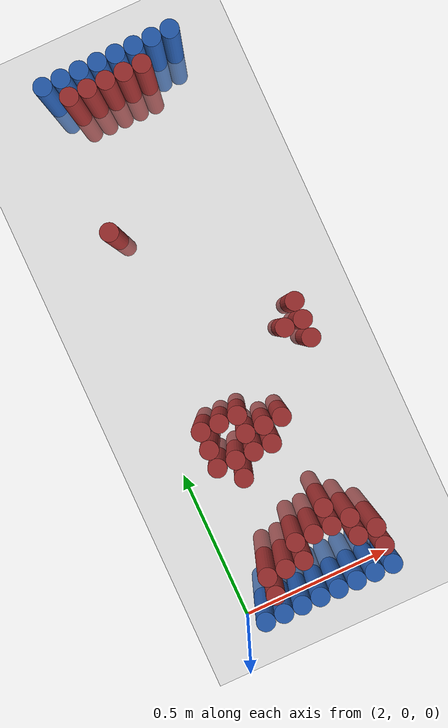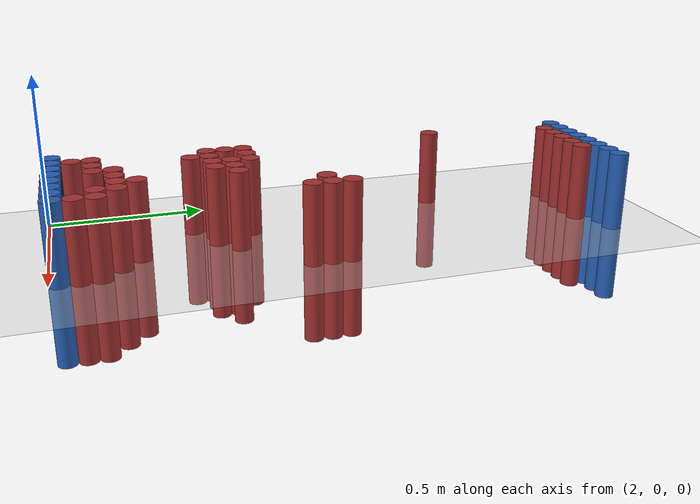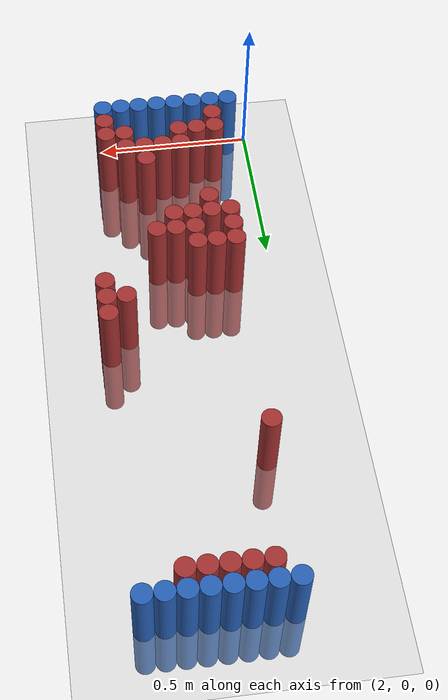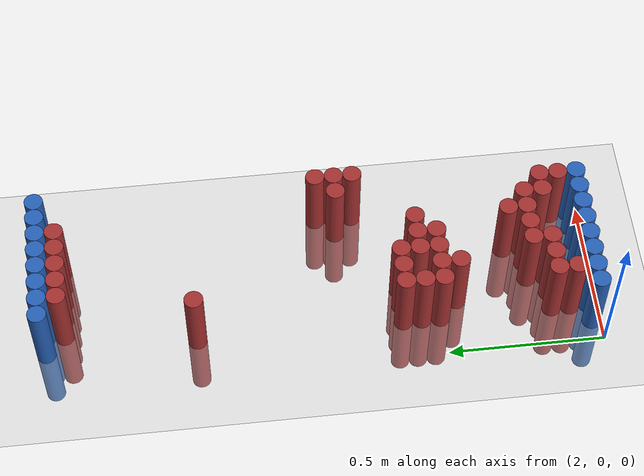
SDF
<sdf version="1.6">
 <world name="default">
  <model name="ground_plane">
   <static>1</static>
   <link name="link">
    <collision name="collision">
     <geometry><plane><normal>0 0 1</normal><size>100 100</size></plane></geometry>
     <surface><friction><ode><mu>100</mu><mu2>50</mu2></ode></friction></surface>
    </collision>
    <visual name="visual">
     <cast_shadows>0</cast_shadows>
     <geometry><plane><normal>0 0 1</normal><size>100 100</size></plane></geometry>
     <material>
      <script><uri>file://media/materials/scripts/gazebo.material</uri><name>Gazebo/Grey</name></script>
     </material>
    </visual>
   </link>
  </model>
  <model name="unit_cylinder_96">
   <static>1</static>
   <pose>2.130000 1.770000 0.000000 0.000000 0.000000 0.000000</pose>
   <link name="link">
    <inertial>
     <mass>1</mass>
     <inertia><ixx>0.145833</ixx><ixy>0</ixy><ixz>0</ixz><iyy>0.145833</iyy><iyz>0</iyz><izz>0.125</izz></inertia>
    </inertial>
    <collision name="collision">
     <geometry><cylinder><radius>0.030000</radius><length>0.5</length></cylinder></geometry>
    </collision>
    <visual name="visual">
     <geometry><cylinder><radius>0.030000</radius><length>0.5</length></cylinder></geometry>
     <material>
      <ambient>0.152000 0.379000 0.720000 1</ambient>
      <diffuse>0.152000 0.379000 0.720000 1</diffuse>
     </material>
     <material>
      <script><name>Gazebo/Grey</name><uri>file://media/materials/scripts/gazebo.material</uri></script>
     </material>
    </visual>
   </link>
  </model>
  <model name="unit_cylinder_97">
   <static>1</static>
   <pose>2.190000 1.770000 0.000000 0.000000 0.000000 0.000000</pose>
   <link name="link">
    <inertial>
     <mass>1</mass>
     <inertia><ixx>0.145833</ixx><ixy>0</ixy><ixz>0</ixz><iyy>0.145833</iyy><iyz>0</iyz><izz>0.125</izz></inertia>
    </inertial>
    <collision name="collision">
     <geometry><cylinder><radius>0.030000</radius><length>0.5</length></cylinder></geometry>
    </collision>
    <visual name="visual">
     <geometry><cylinder><radius>0.030000</radius><length>0.5</length></cylinder></geometry>
     <material>
      <ambient>0.152000 0.379000 0.720000 1</ambient>
      <diffuse>0.152000 0.379000 0.720000 1</diffuse>
     </material>
     <material>
      <script><name>Gazebo/Grey</name><uri>file://media/materials/scripts/gazebo.material</uri></script>
     </material>
    </visual>
   </link>
  </model>
  <model name="unit_cylinder_98">
   <static>1</static>
   <pose>2.250000 1.770000 0.000000 0.000000 0.000000 0.000000</pose>
   <link name="link">
    <inertial>
     <mass>1</mass>
     <inertia><ixx>0.145833</ixx><ixy>0</ixy><ixz>0</ixz><iyy>0.145833</iyy><iyz>0</iyz><izz>0.125</izz></inertia>
    </inertial>
    <collision name="collision">
     <geometry><cylinder><radius>0.030000</radius><length>0.5</length></cylinder></geometry>
    </collision>
    <visual name="visual">
     <geometry><cylinder><radius>0.030000</radius><length>0.5</length></cylinder></geometry>
     <material>
      <ambient>0.152000 0.379000 0.720000 1</ambient>
      <diffuse>0.152000 0.379000 0.720000 1</diffuse>
     </material>
     <material>
      <script><name>Gazebo/Grey</name><uri>file://media/materials/scripts/gazebo.material</uri></script>
     </material>
    </visual>
   </link>
  </model>
  <model name="unit_cylinder_99">
   <static>1</static>
   <pose>2.310000 1.770000 0.000000 0.000000 0.000000 0.000000</pose>
   <link name="link">
    <inertial>
     <mass>1</mass>
     <inertia><ixx>0.145833</ixx><ixy>0</ixy><ixz>0</ixz><iyy>0.145833</iyy><iyz>0</iyz><izz>0.125</izz></inertia>
    </inertial>
    <collision name="collision">
     <geometry><cylinder><radius>0.030000</radius><length>0.5</length></cylinder></geometry>
    </collision>
    <visual name="visual">
     <geometry><cylinder><radius>0.030000</radius><length>0.5</length></cylinder></geometry>
     <material>
      <ambient>0.152000 0.379000 0.720000 1</ambient>
      <diffuse>0.152000 0.379000 0.720000 1</diffuse>
     </material>
     <material>
      <script><name>Gazebo/Grey</name><uri>file://media/materials/scripts/gazebo.material</uri></script>
     </material>
    </visual>
   </link>
  </model>
  <model name="unit_cylinder_100">
   <static>1</static>
   <pose>2.370000 1.770000 0.000000 0.000000 0.000000 0.000000</pose>
   <link name="link">
    <inertial>
     <mass>1</mass>
     <inertia><ixx>0.145833</ixx><ixy>0</ixy><ixz>0</ixz><iyy>0.145833</iyy><iyz>0</iyz><izz>0.125</izz></inertia>
    </inertial>
    <collision name="collision">
     <geometry><cylinder><radius>0.030000</radius><length>0.5</length></cylinder></geometry>
    </collision>
    <visual name="visual">
     <geometry><cylinder><radius>0.030000</radius><length>0.5</length></cylinder></geometry>
     <material>
      <ambient>0.152000 0.379000 0.720000 1</ambient>
      <diffuse>0.152000 0.379000 0.720000 1</diffuse>
     </material>
     <material>
      <script><name>Gazebo/Grey</name><uri>file://media/materials/scripts/gazebo.material</uri></script>
     </material>
    </visual>
   </link>
  </model>
  <model name="unit_cylinder_101">
   <static>1</static>
   <pose>2.430000 1.770000 0.000000 0.000000 0.000000 0.000000</pose>
   <link name="link">
    <inertial>
     <mass>1</mass>
     <inertia><ixx>0.145833</ixx><ixy>0</ixy><ixz>0</ixz><iyy>0.145833</iyy><iyz>0</iyz><izz>0.125</izz></inertia>
    </inertial>
    <collision name="collision">
     <geometry><cylinder><radius>0.030000</radius><length>0.5</length></cylinder></geometry>
    </collision>
    <visual name="visual">
     <geometry><cylinder><radius>0.030000</radius><length>0.5</length></cylinder></geometry>
     <material>
      <ambient>0.152000 0.379000 0.720000 1</ambient>
      <diffuse>0.152000 0.379000 0.720000 1</diffuse>
     </material>
     <material>
      <script><name>Gazebo/Grey</name><uri>file://media/materials/scripts/gazebo.material</uri></script>
     </material>
    </visual>
   </link>
  </model>
  <model name="unit_cylinder_102">
   <static>1</static>
   <pose>2.490000 1.770000 0.000000 0.000000 0.000000 0.000000</pose>
   <link name="link">
    <inertial>
     <mass>1</mass>
     <inertia><ixx>0.145833</ixx><ixy>0</ixy><ixz>0</ixz><iyy>0.145833</iyy><iyz>0</iyz><izz>0.125</izz></inertia>
    </inertial>
    <collision name="collision">
     <geometry><cylinder><radius>0.030000</radius><length>0.5</length></cylinder></geometry>
    </collision>
    <visual name="visual">
     <geometry><cylinder><radius>0.030000</radius><length>0.5</length></cylinder></geometry>
     <material>
      <ambient>0.152000 0.379000 0.720000 1</ambient>
      <diffuse>0.152000 0.379000 0.720000 1</diffuse>
     </material>
     <material>
      <script><name>Gazebo/Grey</name><uri>file://media/materials/scripts/gazebo.material</uri></script>
     </material>
    </visual>
   </link>
  </model>
  <model name="unit_cylinder_103">
   <static>1</static>
   <pose>2.550000 1.770000 0.000000 0.000000 0.000000 0.000000</pose>
   <link name="link">
    <inertial>
     <mass>1</mass>
     <inertia><ixx>0.145833</ixx><ixy>0</ixy><ixz>0</ixz><iyy>0.145833</iyy><iyz>0</iyz><izz>0.125</izz></inertia>
    </inertial>
    <collision name="collision">
     <geometry><cylinder><radius>0.030000</radius><length>0.5</length></cylinder></geometry>
    </collision>
    <visual name="visual">
     <geometry><cylinder><radius>0.030000</radius><length>0.5</length></cylinder></geometry>
     <material>
      <ambient>0.152000 0.379000 0.720000 1</ambient>
      <diffuse>0.152000 0.379000 0.720000 1</diffuse>
     </material>
     <material>
      <script><name>Gazebo/Grey</name><uri>file://media/materials/scripts/gazebo.material</uri></script>
     </material>
    </visual>
   </link>
  </model>
  <model name="unit_cylinder_125">
   <static>1</static>
   <pose>2.190000 1.710000 0.000000 0.000000 0.000000 0.000000</pose>
   <link name="link">
    <inertial>
     <mass>1</mass>
     <inertia><ixx>0.145833</ixx><ixy>0</ixy><ixz>0</ixz><iyy>0.145833</iyy><iyz>0</iyz><izz>0.125</izz></inertia>
    </inertial>
    <collision name="collision">
     <geometry><cylinder><radius>0.030000</radius><length>0.5</length></cylinder></geometry>
    </collision>
    <visual name="visual">
     <geometry><cylinder><radius>0.030000</radius><length>0.5</length></cylinder></geometry>
     <material>
      <ambient>0.648000 0.192000 0.192000 1</ambient>
      <diffuse>0.648000 0.192000 0.192000 1</diffuse>
     </material>
     <material>
      <script><name>Gazebo/Grey</name><uri>file://media/materials/scripts/gazebo.material</uri></script>
     </material>
    </visual>
   </link>
  </model>
  <model name="unit_cylinder_126">
   <static>1</static>
   <pose>2.250000 1.710000 0.000000 0.000000 0.000000 0.000000</pose>
   <link name="link">
    <inertial>
     <mass>1</mass>
     <inertia><ixx>0.145833</ixx><ixy>0</ixy><ixz>0</ixz><iyy>0.145833</iyy><iyz>0</iyz><izz>0.125</izz></inertia>
    </inertial>
    <collision name="collision">
     <geometry><cylinder><radius>0.030000</radius><length>0.5</length></cylinder></geometry>
    </collision>
    <visual name="visual">
     <geometry><cylinder><radius>0.030000</radius><length>0.5</length></cylinder></geometry>
     <material>
      <ambient>0.648000 0.192000 0.192000 1</ambient>
      <diffuse>0.648000 0.192000 0.192000 1</diffuse>
     </material>
     <material>
      <script><name>Gazebo/Grey</name><uri>file://media/materials/scripts/gazebo.material</uri></script>
     </material>
    </visual>
   </link>
  </model>
  <model name="unit_cylinder_127">
   <static>1</static>
   <pose>2.310000 1.710000 0.000000 0.000000 0.000000 0.000000</pose>
   <link name="link">
    <inertial>
     <mass>1</mass>
     <inertia><ixx>0.145833</ixx><ixy>0</ixy><ixz>0</ixz><iyy>0.145833</iyy><iyz>0</iyz><izz>0.125</izz></inertia>
    </inertial>
    <collision name="collision">
     <geometry><cylinder><radius>0.030000</radius><length>0.5</length></cylinder></geometry>
    </collision>
    <visual name="visual">
     <geometry><cylinder><radius>0.030000</radius><length>0.5</length></cylinder></geometry>
     <material>
      <ambient>0.648000 0.192000 0.192000 1</ambient>
      <diffuse>0.648000 0.192000 0.192000 1</diffuse>
     </material>
     <material>
      <script><name>Gazebo/Grey</name><uri>file://media/materials/scripts/gazebo.material</uri></script>
     </material>
    </visual>
   </link>
  </model>
  <model name="unit_cylinder_128">
   <static>1</static>
   <pose>2.370000 1.710000 0.000000 0.000000 0.000000 0.000000</pose>
   <link name="link">
    <inertial>
     <mass>1</mass>
     <inertia><ixx>0.145833</ixx><ixy>0</ixy><ixz>0</ixz><iyy>0.145833</iyy><iyz>0</iyz><izz>0.125</izz></inertia>
    </inertial>
    <collision name="collision">
     <geometry><cylinder><radius>0.030000</radius><length>0.5</length></cylinder></geometry>
    </collision>
    <visual name="visual">
     <geometry><cylinder><radius>0.030000</radius><length>0.5</length></cylinder></geometry>
     <material>
      <ambient>0.648000 0.192000 0.192000 1</ambient>
      <diffuse>0.648000 0.192000 0.192000 1</diffuse>
     </material>
     <material>
      <script><name>Gazebo/Grey</name><uri>file://media/materials/scripts/gazebo.material</uri></script>
     </material>
    </visual>
   </link>
  </model>
  <model name="unit_cylinder_129">
   <static>1</static>
   <pose>2.430000 1.710000 0.000000 0.000000 0.000000 0.000000</pose>
   <link name="link">
    <inertial>
     <mass>1</mass>
     <inertia><ixx>0.145833</ixx><ixy>0</ixy><ixz>0</ixz><iyy>0.145833</iyy><iyz>0</iyz><izz>0.125</izz></inertia>
    </inertial>
    <collision name="collision">
     <geometry><cylinder><radius>0.030000</radius><length>0.5</length></cylinder></geometry>
    </collision>
    <visual name="visual">
     <geometry><cylinder><radius>0.030000</radius><length>0.5</length></cylinder></geometry>
     <material>
      <ambient>0.648000 0.192000 0.192000 1</ambient>
      <diffuse>0.648000 0.192000 0.192000 1</diffuse>
     </material>
     <material>
      <script><name>Gazebo/Grey</name><uri>file://media/materials/scripts/gazebo.material</uri></script>
     </material>
    </visual>
   </link>
  </model>
  <model name="unit_cylinder_150">
   <static>1</static>
   <pose>2.130000 1.290000 0.000000 0.000000 0.000000 0.000000</pose>
   <link name="link">
    <inertial>
     <mass>1</mass>
     <inertia><ixx>0.145833</ixx><ixy>0</ixy><ixz>0</ixz><iyy>0.145833</iyy><iyz>0</iyz><izz>0.125</izz></inertia>
    </inertial>
    <collision name="collision">
     <geometry><cylinder><radius>0.030000</radius><length>0.5</length></cylinder></geometry>
    </collision>
    <visual name="visual">
     <geometry><cylinder><radius>0.030000</radius><length>0.5</length></cylinder></geometry>
     <material>
      <ambient>0.648000 0.192000 0.192000 1</ambient>
      <diffuse>0.648000 0.192000 0.192000 1</diffuse>
     </material>
     <material>
      <script><name>Gazebo/Grey</name><uri>file://media/materials/scripts/gazebo.material</uri></script>
     </material>
    </visual>
   </link>
  </model>
  <model name="unit_cylinder_175">
   <static>1</static>
   <pose>2.550000 0.870000 0.000000 0.000000 0.000000 0.000000</pose>
   <link name="link">
    <inertial>
     <mass>1</mass>
     <inertia><ixx>0.145833</ixx><ixy>0</ixy><ixz>0</ixz><iyy>0.145833</iyy><iyz>0</iyz><izz>0.125</izz></inertia>
    </inertial>
    <collision name="collision">
     <geometry><cylinder><radius>0.030000</radius><length>0.5</length></cylinder></geometry>
    </collision>
    <visual name="visual">
     <geometry><cylinder><radius>0.030000</radius><length>0.5</length></cylinder></geometry>
     <material>
      <ambient>0.648000 0.192000 0.192000 1</ambient>
      <diffuse>0.648000 0.192000 0.192000 1</diffuse>
     </material>
     <material>
      <script><name>Gazebo/Grey</name><uri>file://media/materials/scripts/gazebo.material</uri></script>
     </material>
    </visual>
   </link>
  </model>
  <model name="unit_cylinder_181">
   <static>1</static>
   <pose>2.490000 0.810000 0.000000 0.000000 0.000000 0.000000</pose>
   <link name="link">
    <inertial>
     <mass>1</mass>
     <inertia><ixx>0.145833</ixx><ixy>0</ixy><ixz>0</ixz><iyy>0.145833</iyy><iyz>0</iyz><izz>0.125</izz></inertia>
    </inertial>
    <collision name="collision">
     <geometry><cylinder><radius>0.030000</radius><length>0.5</length></cylinder></geometry>
    </collision>
    <visual name="visual">
     <geometry><cylinder><radius>0.030000</radius><length>0.5</length></cylinder></geometry>
     <material>
      <ambient>0.648000 0.192000 0.192000 1</ambient>
      <diffuse>0.648000 0.192000 0.192000 1</diffuse>
     </material>
     <material>
      <script><name>Gazebo/Grey</name><uri>file://media/materials/scripts/gazebo.material</uri></script>
     </material>
    </visual>
   </link>
  </model>
  <model name="unit_cylinder_182">
   <static>1</static>
   <pose>2.550000 0.810000 0.000000 0.000000 0.000000 0.000000</pose>
   <link name="link">
    <inertial>
     <mass>1</mass>
     <inertia><ixx>0.145833</ixx><ixy>0</ixy><ixz>0</ixz><iyy>0.145833</iyy><iyz>0</iyz><izz>0.125</izz></inertia>
    </inertial>
    <collision name="collision">
     <geometry><cylinder><radius>0.030000</radius><length>0.5</length></cylinder></geometry>
    </collision>
    <visual name="visual">
     <geometry><cylinder><radius>0.030000</radius><length>0.5</length></cylinder></geometry>
     <material>
      <ambient>0.648000 0.192000 0.192000 1</ambient>
      <diffuse>0.648000 0.192000 0.192000 1</diffuse>
     </material>
     <material>
      <script><name>Gazebo/Grey</name><uri>file://media/materials/scripts/gazebo.material</uri></script>
     </material>
    </visual>
   </link>
  </model>
  <model name="unit_cylinder_191">
   <static>1</static>
   <pose>2.550000 0.750000 0.000000 0.000000 0.000000 0.000000</pose>
   <link name="link">
    <inertial>
     <mass>1</mass>
     <inertia><ixx>0.145833</ixx><ixy>0</ixy><ixz>0</ixz><iyy>0.145833</iyy><iyz>0</iyz><izz>0.125</izz></inertia>
    </inertial>
    <collision name="collision">
     <geometry><cylinder><radius>0.030000</radius><length>0.5</length></cylinder></geometry>
    </collision>
    <visual name="visual">
     <geometry><cylinder><radius>0.030000</radius><length>0.5</length></cylinder></geometry>
     <material>
      <ambient>0.648000 0.192000 0.192000 1</ambient>
      <diffuse>0.648000 0.192000 0.192000 1</diffuse>
     </material>
     <material>
      <script><name>Gazebo/Grey</name><uri>file://media/materials/scripts/gazebo.material</uri></script>
     </material>
    </visual>
   </link>
  </model>
  <model name="unit_cylinder_202">
   <static>1</static>
   <pose>2.130000 0.630000 0.000000 0.000000 0.000000 0.000000</pose>
   <link name="link">
    <inertial>
     <mass>1</mass>
     <inertia><ixx>0.145833</ixx><ixy>0</ixy><ixz>0</ixz><iyy>0.145833</iyy><iyz>0</iyz><izz>0.125</izz></inertia>
    </inertial>
    <collision name="collision">
     <geometry><cylinder><radius>0.030000</radius><length>0.5</length></cylinder></geometry>
    </collision>
    <visual name="visual">
     <geometry><cylinder><radius>0.030000</radius><length>0.5</length></cylinder></geometry>
     <material>
      <ambient>0.648000 0.192000 0.192000 1</ambient>
      <diffuse>0.648000 0.192000 0.192000 1</diffuse>
     </material>
     <material>
      <script><name>Gazebo/Grey</name><uri>file://media/materials/scripts/gazebo.material</uri></script>
     </material>
    </visual>
   </link>
  </model>
  <model name="unit_cylinder_203">
   <static>1</static>
   <pose>2.190000 0.630000 0.000000 0.000000 0.000000 0.000000</pose>
   <link name="link">
    <inertial>
     <mass>1</mass>
     <inertia><ixx>0.145833</ixx><ixy>0</ixy><ixz>0</ixz><iyy>0.145833</iyy><iyz>0</iyz><izz>0.125</izz></inertia>
    </inertial>
    <collision name="collision">
     <geometry><cylinder><radius>0.030000</radius><length>0.5</length></cylinder></geometry>
    </collision>
    <visual name="visual">
     <geometry><cylinder><radius>0.030000</radius><length>0.5</length></cylinder></geometry>
     <material>
      <ambient>0.648000 0.192000 0.192000 1</ambient>
      <diffuse>0.648000 0.192000 0.192000 1</diffuse>
     </material>
     <material>
      <script><name>Gazebo/Grey</name><uri>file://media/materials/scripts/gazebo.material</uri></script>
     </material>
    </visual>
   </link>
  </model>
  <model name="unit_cylinder_204">
   <static>1</static>
   <pose>2.250000 0.630000 0.000000 0.000000 0.000000 0.000000</pose>
   <link name="link">
    <inertial>
     <mass>1</mass>
     <inertia><ixx>0.145833</ixx><ixy>0</ixy><ixz>0</ixz><iyy>0.145833</iyy><iyz>0</iyz><izz>0.125</izz></inertia>
    </inertial>
    <collision name="collision">
     <geometry><cylinder><radius>0.030000</radius><length>0.5</length></cylinder></geometry>
    </collision>
    <visual name="visual">
     <geometry><cylinder><radius>0.030000</radius><length>0.5</length></cylinder></geometry>
     <material>
      <ambient>0.648000 0.192000 0.192000 1</ambient>
      <diffuse>0.648000 0.192000 0.192000 1</diffuse>
     </material>
     <material>
      <script><name>Gazebo/Grey</name><uri>file://media/materials/scripts/gazebo.material</uri></script>
     </material>
    </visual>
   </link>
  </model>
  <model name="unit_cylinder_210">
   <static>1</static>
   <pose>2.130000 0.570000 0.000000 0.000000 0.000000 0.000000</pose>
   <link name="link">
    <inertial>
     <mass>1</mass>
     <inertia><ixx>0.145833</ixx><ixy>0</ixy><ixz>0</ixz><iyy>0.145833</iyy><iyz>0</iyz><izz>0.125</izz></inertia>
    </inertial>
    <collision name="collision">
     <geometry><cylinder><radius>0.030000</radius><length>0.5</length></cylinder></geometry>
    </collision>
    <visual name="visual">
     <geometry><cylinder><radius>0.030000</radius><length>0.5</length></cylinder></geometry>
     <material>
      <ambient>0.648000 0.192000 0.192000 1</ambient>
      <diffuse>0.648000 0.192000 0.192000 1</diffuse>
     </material>
     <material>
      <script><name>Gazebo/Grey</name><uri>file://media/materials/scripts/gazebo.material</uri></script>
     </material>
    </visual>
   </link>
  </model>
  <model name="unit_cylinder_211">
   <static>1</static>
   <pose>2.250000 0.570000 0.000000 0.000000 0.000000 0.000000</pose>
   <link name="link">
    <inertial>
     <mass>1</mass>
     <inertia><ixx>0.145833</ixx><ixy>0</ixy><ixz>0</ixz><iyy>0.145833</iyy><iyz>0</iyz><izz>0.125</izz></inertia>
    </inertial>
    <collision name="collision">
     <geometry><cylinder><radius>0.030000</radius><length>0.5</length></cylinder></geometry>
    </collision>
    <visual name="visual">
     <geometry><cylinder><radius>0.030000</radius><length>0.5</length></cylinder></geometry>
     <material>
      <ambient>0.648000 0.192000 0.192000 1</ambient>
      <diffuse>0.648000 0.192000 0.192000 1</diffuse>
     </material>
     <material>
      <script><name>Gazebo/Grey</name><uri>file://media/materials/scripts/gazebo.material</uri></script>
     </material>
    </visual>
   </link>
  </model>
  <model name="unit_cylinder_212">
   <static>1</static>
   <pose>2.310000 0.570000 0.000000 0.000000 0.000000 0.000000</pose>
   <link name="link">
    <inertial>
     <mass>1</mass>
     <inertia><ixx>0.145833</ixx><ixy>0</ixy><ixz>0</ixz><iyy>0.145833</iyy><iyz>0</iyz><izz>0.125</izz></inertia>
    </inertial>
    <collision name="collision">
     <geometry><cylinder><radius>0.030000</radius><length>0.5</length></cylinder></geometry>
    </collision>
    <visual name="visual">
     <geometry><cylinder><radius>0.030000</radius><length>0.5</length></cylinder></geometry>
     <material>
      <ambient>0.648000 0.192000 0.192000 1</ambient>
      <diffuse>0.648000 0.192000 0.192000 1</diffuse>
     </material>
     <material>
      <script><name>Gazebo/Grey</name><uri>file://media/materials/scripts/gazebo.material</uri></script>
     </material>
    </visual>
   </link>
  </model>
  <model name="unit_cylinder_213">
   <static>1</static>
   <pose>2.370000 0.570000 0.000000 0.000000 0.000000 0.000000</pose>
   <link name="link">
    <inertial>
     <mass>1</mass>
     <inertia><ixx>0.145833</ixx><ixy>0</ixy><ixz>0</ixz><iyy>0.145833</iyy><iyz>0</iyz><izz>0.125</izz></inertia>
    </inertial>
    <collision name="collision">
     <geometry><cylinder><radius>0.030000</radius><length>0.5</length></cylinder></geometry>
    </collision>
    <visual name="visual">
     <geometry><cylinder><radius>0.030000</radius><length>0.5</length></cylinder></geometry>
     <material>
      <ambient>0.648000 0.192000 0.192000 1</ambient>
      <diffuse>0.648000 0.192000 0.192000 1</diffuse>
     </material>
     <material>
      <script><name>Gazebo/Grey</name><uri>file://media/materials/scripts/gazebo.material</uri></script>
     </material>
    </visual>
   </link>
  </model>
  <model name="unit_cylinder_217">
   <static>1</static>
   <pose>2.130000 0.510000 0.000000 0.000000 0.000000 0.000000</pose>
   <link name="link">
    <inertial>
     <mass>1</mass>
     <inertia><ixx>0.145833</ixx><ixy>0</ixy><ixz>0</ixz><iyy>0.145833</iyy><iyz>0</iyz><izz>0.125</izz></inertia>
    </inertial>
    <collision name="collision">
     <geometry><cylinder><radius>0.030000</radius><length>0.5</length></cylinder></geometry>
    </collision>
    <visual name="visual">
     <geometry><cylinder><radius>0.030000</radius><length>0.5</length></cylinder></geometry>
     <material>
      <ambient>0.648000 0.192000 0.192000 1</ambient>
      <diffuse>0.648000 0.192000 0.192000 1</diffuse>
     </material>
     <material>
      <script><name>Gazebo/Grey</name><uri>file://media/materials/scripts/gazebo.material</uri></script>
     </material>
    </visual>
   </link>
  </model>
  <model name="unit_cylinder_218">
   <static>1</static>
   <pose>2.190000 0.510000 0.000000 0.000000 0.000000 0.000000</pose>
   <link name="link">
    <inertial>
     <mass>1</mass>
     <inertia><ixx>0.145833</ixx><ixy>0</ixy><ixz>0</ixz><iyy>0.145833</iyy><iyz>0</iyz><izz>0.125</izz></inertia>
    </inertial>
    <collision name="collision">
     <geometry><cylinder><radius>0.030000</radius><length>0.5</length></cylinder></geometry>
    </collision>
    <visual name="visual">
     <geometry><cylinder><radius>0.030000</radius><length>0.5</length></cylinder></geometry>
     <material>
      <ambient>0.648000 0.192000 0.192000 1</ambient>
      <diffuse>0.648000 0.192000 0.192000 1</diffuse>
     </material>
     <material>
      <script><name>Gazebo/Grey</name><uri>file://media/materials/scripts/gazebo.material</uri></script>
     </material>
    </visual>
   </link>
  </model>
  <model name="unit_cylinder_219">
   <static>1</static>
   <pose>2.250000 0.510000 0.000000 0.000000 0.000000 0.000000</pose>
   <link name="link">
    <inertial>
     <mass>1</mass>
     <inertia><ixx>0.145833</ixx><ixy>0</ixy><ixz>0</ixz><iyy>0.145833</iyy><iyz>0</iyz><izz>0.125</izz></inertia>
    </inertial>
    <collision name="collision">
     <geometry><cylinder><radius>0.030000</radius><length>0.5</length></cylinder></geometry>
    </collision>
    <visual name="visual">
     <geometry><cylinder><radius>0.030000</radius><length>0.5</length></cylinder></geometry>
     <material>
      <ambient>0.648000 0.192000 0.192000 1</ambient>
      <diffuse>0.648000 0.192000 0.192000 1</diffuse>
     </material>
     <material>
      <script><name>Gazebo/Grey</name><uri>file://media/materials/scripts/gazebo.material</uri></script>
     </material>
    </visual>
   </link>
  </model>
  <model name="unit_cylinder_220">
   <static>1</static>
   <pose>2.310000 0.510000 0.000000 0.000000 0.000000 0.000000</pose>
   <link name="link">
    <inertial>
     <mass>1</mass>
     <inertia><ixx>0.145833</ixx><ixy>0</ixy><ixz>0</ixz><iyy>0.145833</iyy><iyz>0</iyz><izz>0.125</izz></inertia>
    </inertial>
    <collision name="collision">
     <geometry><cylinder><radius>0.030000</radius><length>0.5</length></cylinder></geometry>
    </collision>
    <visual name="visual">
     <geometry><cylinder><radius>0.030000</radius><length>0.5</length></cylinder></geometry>
     <material>
      <ambient>0.648000 0.192000 0.192000 1</ambient>
      <diffuse>0.648000 0.192000 0.192000 1</diffuse>
     </material>
     <material>
      <script><name>Gazebo/Grey</name><uri>file://media/materials/scripts/gazebo.material</uri></script>
     </material>
    </visual>
   </link>
  </model>
  <model name="unit_cylinder_223">
   <static>1</static>
   <pose>2.190000 0.450000 0.000000 0.000000 0.000000 0.000000</pose>
   <link name="link">
    <inertial>
     <mass>1</mass>
     <inertia><ixx>0.145833</ixx><ixy>0</ixy><ixz>0</ixz><iyy>0.145833</iyy><iyz>0</iyz><izz>0.125</izz></inertia>
    </inertial>
    <collision name="collision">
     <geometry><cylinder><radius>0.030000</radius><length>0.5</length></cylinder></geometry>
    </collision>
    <visual name="visual">
     <geometry><cylinder><radius>0.030000</radius><length>0.5</length></cylinder></geometry>
     <material>
      <ambient>0.648000 0.192000 0.192000 1</ambient>
      <diffuse>0.648000 0.192000 0.192000 1</diffuse>
     </material>
     <material>
      <script><name>Gazebo/Grey</name><uri>file://media/materials/scripts/gazebo.material</uri></script>
     </material>
    </visual>
   </link>
  </model>
  <model name="unit_cylinder_228">
   <static>1</static>
   <pose>2.370000 0.270000 0.000000 0.000000 0.000000 0.000000</pose>
   <link name="link">
    <inertial>
     <mass>1</mass>
     <inertia><ixx>0.145833</ixx><ixy>0</ixy><ixz>0</ixz><iyy>0.145833</iyy><iyz>0</iyz><izz>0.125</izz></inertia>
    </inertial>
    <collision name="collision">
     <geometry><cylinder><radius>0.030000</radius><length>0.5</length></cylinder></geometry>
    </collision>
    <visual name="visual">
     <geometry><cylinder><radius>0.030000</radius><length>0.5</length></cylinder></geometry>
     <material>
      <ambient>0.648000 0.192000 0.192000 1</ambient>
      <diffuse>0.648000 0.192000 0.192000 1</diffuse>
     </material>
     <material>
      <script><name>Gazebo/Grey</name><uri>file://media/materials/scripts/gazebo.material</uri></script>
     </material>
    </visual>
   </link>
  </model>
  <model name="unit_cylinder_233">
   <static>1</static>
   <pose>2.250000 0.210000 0.000000 0.000000 0.000000 0.000000</pose>
   <link name="link">
    <inertial>
     <mass>1</mass>
     <inertia><ixx>0.145833</ixx><ixy>0</ixy><ixz>0</ixz><iyy>0.145833</iyy><iyz>0</iyz><izz>0.125</izz></inertia>
    </inertial>
    <collision name="collision">
     <geometry><cylinder><radius>0.030000</radius><length>0.5</length></cylinder></geometry>
    </collision>
    <visual name="visual">
     <geometry><cylinder><radius>0.030000</radius><length>0.5</length></cylinder></geometry>
     <material>
      <ambient>0.648000 0.192000 0.192000 1</ambient>
      <diffuse>0.648000 0.192000 0.192000 1</diffuse>
     </material>
     <material>
      <script><name>Gazebo/Grey</name><uri>file://media/materials/scripts/gazebo.material</uri></script>
     </material>
    </visual>
   </link>
  </model>
  <model name="unit_cylinder_234">
   <static>1</static>
   <pose>2.310000 0.210000 0.000000 0.000000 0.000000 0.000000</pose>
   <link name="link">
    <inertial>
     <mass>1</mass>
     <inertia><ixx>0.145833</ixx><ixy>0</ixy><ixz>0</ixz><iyy>0.145833</iyy><iyz>0</iyz><izz>0.125</izz></inertia>
    </inertial>
    <collision name="collision">
     <geometry><cylinder><radius>0.030000</radius><length>0.5</length></cylinder></geometry>
    </collision>
    <visual name="visual">
     <geometry><cylinder><radius>0.030000</radius><length>0.5</length></cylinder></geometry>
     <material>
      <ambient>0.648000 0.192000 0.192000 1</ambient>
      <diffuse>0.648000 0.192000 0.192000 1</diffuse>
     </material>
     <material>
      <script><name>Gazebo/Grey</name><uri>file://media/materials/scripts/gazebo.material</uri></script>
     </material>
    </visual>
   </link>
  </model>
  <model name="unit_cylinder_235">
   <static>1</static>
   <pose>2.370000 0.210000 0.000000 0.000000 0.000000 0.000000</pose>
   <link name="link">
    <inertial>
     <mass>1</mass>
     <inertia><ixx>0.145833</ixx><ixy>0</ixy><ixz>0</ixz><iyy>0.145833</iyy><iyz>0</iyz><izz>0.125</izz></inertia>
    </inertial>
    <collision name="collision">
     <geometry><cylinder><radius>0.030000</radius><length>0.5</length></cylinder></geometry>
    </collision>
    <visual name="visual">
     <geometry><cylinder><radius>0.030000</radius><length>0.5</length></cylinder></geometry>
     <material>
      <ambient>0.648000 0.192000 0.192000 1</ambient>
      <diffuse>0.648000 0.192000 0.192000 1</diffuse>
     </material>
     <material>
      <script><name>Gazebo/Grey</name><uri>file://media/materials/scripts/gazebo.material</uri></script>
     </material>
    </visual>
   </link>
  </model>
  <model name="unit_cylinder_236">
   <static>1</static>
   <pose>2.430000 0.210000 0.000000 0.000000 0.000000 0.000000</pose>
   <link name="link">
    <inertial>
     <mass>1</mass>
     <inertia><ixx>0.145833</ixx><ixy>0</ixy><ixz>0</ixz><iyy>0.145833</iyy><iyz>0</iyz><izz>0.125</izz></inertia>
    </inertial>
    <collision name="collision">
     <geometry><cylinder><radius>0.030000</radius><length>0.5</length></cylinder></geometry>
    </collision>
    <visual name="visual">
     <geometry><cylinder><radius>0.030000</radius><length>0.5</length></cylinder></geometry>
     <material>
      <ambient>0.648000 0.192000 0.192000 1</ambient>
      <diffuse>0.648000 0.192000 0.192000 1</diffuse>
     </material>
     <material>
      <script><name>Gazebo/Grey</name><uri>file://media/materials/scripts/gazebo.material</uri></script>
     </material>
    </visual>
   </link>
  </model>
  <model name="unit_cylinder_240">
   <static>1</static>
   <pose>2.130000 0.150000 0.000000 0.000000 0.000000 0.000000</pose>
   <link name="link">
    <inertial>
     <mass>1</mass>
     <inertia><ixx>0.145833</ixx><ixy>0</ixy><ixz>0</ixz><iyy>0.145833</iyy><iyz>0</iyz><izz>0.125</izz></inertia>
    </inertial>
    <collision name="collision">
     <geometry><cylinder><radius>0.030000</radius><length>0.5</length></cylinder></geometry>
    </collision>
    <visual name="visual">
     <geometry><cylinder><radius>0.030000</radius><length>0.5</length></cylinder></geometry>
     <material>
      <ambient>0.648000 0.192000 0.192000 1</ambient>
      <diffuse>0.648000 0.192000 0.192000 1</diffuse>
     </material>
     <material>
      <script><name>Gazebo/Grey</name><uri>file://media/materials/scripts/gazebo.material</uri></script>
     </material>
    </visual>
   </link>
  </model>
  <model name="unit_cylinder_241">
   <static>1</static>
   <pose>2.190000 0.150000 0.000000 0.000000 0.000000 0.000000</pose>
   <link name="link">
    <inertial>
     <mass>1</mass>
     <inertia><ixx>0.145833</ixx><ixy>0</ixy><ixz>0</ixz><iyy>0.145833</iyy><iyz>0</iyz><izz>0.125</izz></inertia>
    </inertial>
    <collision name="collision">
     <geometry><cylinder><radius>0.030000</radius><length>0.5</length></cylinder></geometry>
    </collision>
    <visual name="visual">
     <geometry><cylinder><radius>0.030000</radius><length>0.5</length></cylinder></geometry>
     <material>
      <ambient>0.648000 0.192000 0.192000 1</ambient>
      <diffuse>0.648000 0.192000 0.192000 1</diffuse>
     </material>
     <material>
      <script><name>Gazebo/Grey</name><uri>file://media/materials/scripts/gazebo.material</uri></script>
     </material>
    </visual>
   </link>
  </model>
  <model name="unit_cylinder_242">
   <static>1</static>
   <pose>2.250000 0.150000 0.000000 0.000000 0.000000 0.000000</pose>
   <link name="link">
    <inertial>
     <mass>1</mass>
     <inertia><ixx>0.145833</ixx><ixy>0</ixy><ixz>0</ixz><iyy>0.145833</iyy><iyz>0</iyz><izz>0.125</izz></inertia>
    </inertial>
    <collision name="collision">
     <geometry><cylinder><radius>0.030000</radius><length>0.5</length></cylinder></geometry>
    </collision>
    <visual name="visual">
     <geometry><cylinder><radius>0.030000</radius><length>0.5</length></cylinder></geometry>
     <material>
      <ambient>0.648000 0.192000 0.192000 1</ambient>
      <diffuse>0.648000 0.192000 0.192000 1</diffuse>
     </material>
     <material>
      <script><name>Gazebo/Grey</name><uri>file://media/materials/scripts/gazebo.material</uri></script>
     </material>
    </visual>
   </link>
  </model>
  <model name="unit_cylinder_243">
   <static>1</static>
   <pose>2.430000 0.150000 0.000000 0.000000 0.000000 0.000000</pose>
   <link name="link">
    <inertial>
     <mass>1</mass>
     <inertia><ixx>0.145833</ixx><ixy>0</ixy><ixz>0</ixz><iyy>0.145833</iyy><iyz>0</iyz><izz>0.125</izz></inertia>
    </inertial>
    <collision name="collision">
     <geometry><cylinder><radius>0.030000</radius><length>0.5</length></cylinder></geometry>
    </collision>
    <visual name="visual">
     <geometry><cylinder><radius>0.030000</radius><length>0.5</length></cylinder></geometry>
     <material>
      <ambient>0.648000 0.192000 0.192000 1</ambient>
      <diffuse>0.648000 0.192000 0.192000 1</diffuse>
     </material>
     <material>
      <script><name>Gazebo/Grey</name><uri>file://media/materials/scripts/gazebo.material</uri></script>
     </material>
    </visual>
   </link>
  </model>
  <model name="unit_cylinder_244">
   <static>1</static>
   <pose>2.490000 0.150000 0.000000 0.000000 0.000000 0.000000</pose>
   <link name="link">
    <inertial>
     <mass>1</mass>
     <inertia><ixx>0.145833</ixx><ixy>0</ixy><ixz>0</ixz><iyy>0.145833</iyy><iyz>0</iyz><izz>0.125</izz></inertia>
    </inertial>
    <collision name="collision">
     <geometry><cylinder><radius>0.030000</radius><length>0.5</length></cylinder></geometry>
    </collision>
    <visual name="visual">
     <geometry><cylinder><radius>0.030000</radius><length>0.5</length></cylinder></geometry>
     <material>
      <ambient>0.648000 0.192000 0.192000 1</ambient>
      <diffuse>0.648000 0.192000 0.192000 1</diffuse>
     </material>
     <material>
      <script><name>Gazebo/Grey</name><uri>file://media/materials/scripts/gazebo.material</uri></script>
     </material>
    </visual>
   </link>
  </model>
  <model name="unit_cylinder_251">
   <static>1</static>
   <pose>2.130000 0.090000 0.000000 0.000000 0.000000 0.000000</pose>
   <link name="link">
    <inertial>
     <mass>1</mass>
     <inertia><ixx>0.145833</ixx><ixy>0</ixy><ixz>0</ixz><iyy>0.145833</iyy><iyz>0</iyz><izz>0.125</izz></inertia>
    </inertial>
    <collision name="collision">
     <geometry><cylinder><radius>0.030000</radius><length>0.5</length></cylinder></geometry>
    </collision>
    <visual name="visual">
     <geometry><cylinder><radius>0.030000</radius><length>0.5</length></cylinder></geometry>
     <material>
      <ambient>0.648000 0.192000 0.192000 1</ambient>
      <diffuse>0.648000 0.192000 0.192000 1</diffuse>
     </material>
     <material>
      <script><name>Gazebo/Grey</name><uri>file://media/materials/scripts/gazebo.material</uri></script>
     </material>
    </visual>
   </link>
  </model>
  <model name="unit_cylinder_252">
   <static>1</static>
   <pose>2.490000 0.090000 0.000000 0.000000 0.000000 0.000000</pose>
   <link name="link">
    <inertial>
     <mass>1</mass>
     <inertia><ixx>0.145833</ixx><ixy>0</ixy><ixz>0</ixz><iyy>0.145833</iyy><iyz>0</iyz><izz>0.125</izz></inertia>
    </inertial>
    <collision name="collision">
     <geometry><cylinder><radius>0.030000</radius><length>0.5</length></cylinder></geometry>
    </collision>
    <visual name="visual">
     <geometry><cylinder><radius>0.030000</radius><length>0.5</length></cylinder></geometry>
     <material>
      <ambient>0.648000 0.192000 0.192000 1</ambient>
      <diffuse>0.648000 0.192000 0.192000 1</diffuse>
     </material>
     <material>
      <script><name>Gazebo/Grey</name><uri>file://media/materials/scripts/gazebo.material</uri></script>
     </material>
    </visual>
   </link>
  </model>
  <model name="unit_cylinder_269">
   <static>1</static>
   <pose>2.070000 0.030000 0.000000 0.000000 0.000000 0.000000</pose>
   <link name="link">
    <inertial>
     <mass>1</mass>
     <inertia><ixx>0.145833</ixx><ixy>0</ixy><ixz>0</ixz><iyy>0.145833</iyy><iyz>0</iyz><izz>0.125</izz></inertia>
    </inertial>
    <collision name="collision">
     <geometry><cylinder><radius>0.030000</radius><length>0.5</length></cylinder></geometry>
    </collision>
    <visual name="visual">
     <geometry><cylinder><radius>0.030000</radius><length>0.5</length></cylinder></geometry>
     <material>
      <ambient>0.152000 0.379000 0.720000 1</ambient>
      <diffuse>0.152000 0.379000 0.720000 1</diffuse>
     </material>
     <material>
      <script><name>Gazebo/Grey</name><uri>file://media/materials/scripts/gazebo.material</uri></script>
     </material>
    </visual>
   </link>
  </model>
  <model name="unit_cylinder_270">
   <static>1</static>
   <pose>2.130000 0.030000 0.000000 0.000000 0.000000 0.000000</pose>
   <link name="link">
    <inertial>
     <mass>1</mass>
     <inertia><ixx>0.145833</ixx><ixy>0</ixy><ixz>0</ixz><iyy>0.145833</iyy><iyz>0</iyz><izz>0.125</izz></inertia>
    </inertial>
    <collision name="collision">
     <geometry><cylinder><radius>0.030000</radius><length>0.5</length></cylinder></geometry>
    </collision>
    <visual name="visual">
     <geometry><cylinder><radius>0.030000</radius><length>0.5</length></cylinder></geometry>
     <material>
      <ambient>0.152000 0.379000 0.720000 1</ambient>
      <diffuse>0.152000 0.379000 0.720000 1</diffuse>
     </material>
     <material>
      <script><name>Gazebo/Grey</name><uri>file://media/materials/scripts/gazebo.material</uri></script>
     </material>
    </visual>
   </link>
  </model>
  <model name="unit_cylinder_271">
   <static>1</static>
   <pose>2.190000 0.030000 0.000000 0.000000 0.000000 0.000000</pose>
   <link name="link">
    <inertial>
     <mass>1</mass>
     <inertia><ixx>0.145833</ixx><ixy>0</ixy><ixz>0</ixz><iyy>0.145833</iyy><iyz>0</iyz><izz>0.125</izz></inertia>
    </inertial>
    <collision name="collision">
     <geometry><cylinder><radius>0.030000</radius><length>0.5</length></cylinder></geometry>
    </collision>
    <visual name="visual">
     <geometry><cylinder><radius>0.030000</radius><length>0.5</length></cylinder></geometry>
     <material>
      <ambient>0.152000 0.379000 0.720000 1</ambient>
      <diffuse>0.152000 0.379000 0.720000 1</diffuse>
     </material>
     <material>
      <script><name>Gazebo/Grey</name><uri>file://media/materials/scripts/gazebo.material</uri></script>
     </material>
    </visual>
   </link>
  </model>
  <model name="unit_cylinder_272">
   <static>1</static>
   <pose>2.250000 0.030000 0.000000 0.000000 0.000000 0.000000</pose>
   <link name="link">
    <inertial>
     <mass>1</mass>
     <inertia><ixx>0.145833</ixx><ixy>0</ixy><ixz>0</ixz><iyy>0.145833</iyy><iyz>0</iyz><izz>0.125</izz></inertia>
    </inertial>
    <collision name="collision">
     <geometry><cylinder><radius>0.030000</radius><length>0.5</length></cylinder></geometry>
    </collision>
    <visual name="visual">
     <geometry><cylinder><radius>0.030000</radius><length>0.5</length></cylinder></geometry>
     <material>
      <ambient>0.152000 0.379000 0.720000 1</ambient>
      <diffuse>0.152000 0.379000 0.720000 1</diffuse>
     </material>
     <material>
      <script><name>Gazebo/Grey</name><uri>file://media/materials/scripts/gazebo.material</uri></script>
     </material>
    </visual>
   </link>
  </model>
  <model name="unit_cylinder_273">
   <static>1</static>
   <pose>2.310000 0.030000 0.000000 0.000000 0.000000 0.000000</pose>
   <link name="link">
    <inertial>
     <mass>1</mass>
     <inertia><ixx>0.145833</ixx><ixy>0</ixy><ixz>0</ixz><iyy>0.145833</iyy><iyz>0</iyz><izz>0.125</izz></inertia>
    </inertial>
    <collision name="collision">
     <geometry><cylinder><radius>0.030000</radius><length>0.5</length></cylinder></geometry>
    </collision>
    <visual name="visual">
     <geometry><cylinder><radius>0.030000</radius><length>0.5</length></cylinder></geometry>
     <material>
      <ambient>0.152000 0.379000 0.720000 1</ambient>
      <diffuse>0.152000 0.379000 0.720000 1</diffuse>
     </material>
     <material>
      <script><name>Gazebo/Grey</name><uri>file://media/materials/scripts/gazebo.material</uri></script>
     </material>
    </visual>
   </link>
  </model>
  <model name="unit_cylinder_274">
   <static>1</static>
   <pose>2.370000 0.030000 0.000000 0.000000 0.000000 0.000000</pose>
   <link name="link">
    <inertial>
     <mass>1</mass>
     <inertia><ixx>0.145833</ixx><ixy>0</ixy><ixz>0</ixz><iyy>0.145833</iyy><iyz>0</iyz><izz>0.125</izz></inertia>
    </inertial>
    <collision name="collision">
     <geometry><cylinder><radius>0.030000</radius><length>0.5</length></cylinder></geometry>
    </collision>
    <visual name="visual">
     <geometry><cylinder><radius>0.030000</radius><length>0.5</length></cylinder></geometry>
     <material>
      <ambient>0.152000 0.379000 0.720000 1</ambient>
      <diffuse>0.152000 0.379000 0.720000 1</diffuse>
     </material>
     <material>
      <script><name>Gazebo/Grey</name><uri>file://media/materials/scripts/gazebo.material</uri></script>
     </material>
    </visual>
   </link>
  </model>
  <model name="unit_cylinder_275">
   <static>1</static>
   <pose>2.430000 0.030000 0.000000 0.000000 0.000000 0.000000</pose>
   <link name="link">
    <inertial>
     <mass>1</mass>
     <inertia><ixx>0.145833</ixx><ixy>0</ixy><ixz>0</ixz><iyy>0.145833</iyy><iyz>0</iyz><izz>0.125</izz></inertia>
    </inertial>
    <collision name="collision">
     <geometry><cylinder><radius>0.030000</radius><length>0.5</length></cylinder></geometry>
    </collision>
    <visual name="visual">
     <geometry><cylinder><radius>0.030000</radius><length>0.5</length></cylinder></geometry>
     <material>
      <ambient>0.152000 0.379000 0.720000 1</ambient>
      <diffuse>0.152000 0.379000 0.720000 1</diffuse>
     </material>
     <material>
      <script><name>Gazebo/Grey</name><uri>file://media/materials/scripts/gazebo.material</uri></script>
     </material>
    </visual>
   </link>
  </model>
  <model name="unit_cylinder_276">
   <static>1</static>
   <pose>2.490000 0.030000 0.000000 0.000000 0.000000 0.000000</pose>
   <link name="link">
    <inertial>
     <mass>1</mass>
     <inertia><ixx>0.145833</ixx><ixy>0</ixy><ixz>0</ixz><iyy>0.145833</iyy><iyz>0</iyz><izz>0.125</izz></inertia>
    </inertial>
    <collision name="collision">
     <geometry><cylinder><radius>0.030000</radius><length>0.5</length></cylinder></geometry>
    </collision>
    <visual name="visual">
     <geometry><cylinder><radius>0.030000</radius><length>0.5</length></cylinder></geometry>
     <material>
      <ambient>0.152000 0.379000 0.720000 1</ambient>
      <diffuse>0.152000 0.379000 0.720000 1</diffuse>
     </material>
     <material>
      <script><name>Gazebo/Grey</name><uri>file://media/materials/scripts/gazebo.material</uri></script>
     </material>
    </visual>
   </link>
  </model>
 </world>
</sdf>
